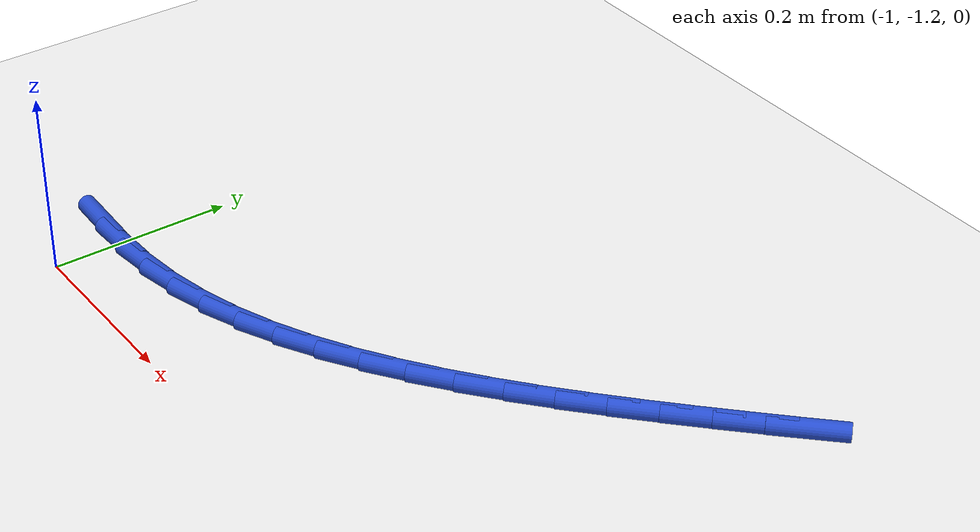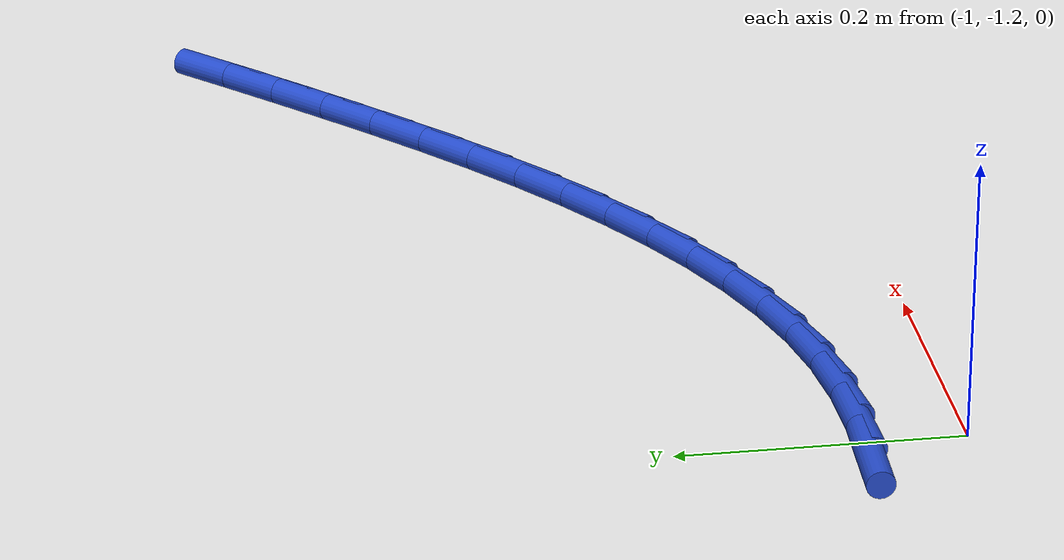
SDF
<sdf version="1.6">
 <world name="default">
  <model name="ground_plane">
   <static>1</static>
   <link name="link">
    <collision name="collision">
     <geometry><plane><normal>0 0 1</normal><size>100 100</size></plane></geometry>
     <surface><friction><ode><mu>100</mu><mu2>50</mu2></ode></friction></surface>
    </collision>
    <visual name="visual">
     <cast_shadows>0</cast_shadows>
     <geometry><plane><normal>0 0 1</normal><size>100 100</size></plane></geometry>
     <material>
      <script><uri>file://media/materials/scripts/gazebo.material</uri><name>Gazebo/WhiteGlow</name></script>
     </material>
    </visual>
   </link>
  </model>
  <model name="line">
   <link name="link_105">
    <pose>-1.0356051593560105 -1.1260041115567843 0.01 0 1.57 -0.04050915887077351</pose>
    <collision name="collision">
     <geometry><cylinder><radius>0.01</radius><length>0.08</length></cylinder></geometry>
    </collision>
    <visual name="visual">
     <material>
      <script><name>Gazebo/Blue</name><uri>file://media/materials/scripts/gazebo.material</uri></script>
     </material>
     <geometry><cylinder><radius>0.01</radius><length>0.08</length></cylinder></geometry>
    </visual>
   </link>
   <link name="link_106">
    <pose>-0.9882071795258592 -1.1279252148051802 0.01 0 1.57 0.03249431978433249</pose>
    <collision name="collision">
     <geometry><cylinder><radius>0.01</radius><length>0.08</length></cylinder></geometry>
    </collision>
    <visual name="visual">
     <material>
      <script><name>Gazebo/Blue</name><uri>file://media/materials/scripts/gazebo.material</uri></script>
     </material>
     <geometry><cylinder><radius>0.01</radius><length>0.08</length></cylinder></geometry>
    </visual>
   </link>
   <link name="link_107">
    <pose>-0.9413491023537062 -1.1264020573324094 0.01 0 1.57 0.11411896585968327</pose>
    <collision name="collision">
     <geometry><cylinder><radius>0.01</radius><length>0.08</length></cylinder></geometry>
    </collision>
    <visual name="visual">
     <material>
      <script><name>Gazebo/Blue</name><uri>file://media/materials/scripts/gazebo.material</uri></script>
     </material>
     <geometry><cylinder><radius>0.01</radius><length>0.08</length></cylinder></geometry>
    </visual>
   </link>
   <link name="link_108">
    <pose>-0.8952899647987054 -1.1211228991957614 0.01 0 1.57 0.2039779095699466</pose>
    <collision name="collision">
     <geometry><cylinder><radius>0.01</radius><length>0.08</length></cylinder></geometry>
    </collision>
    <visual name="visual">
     <material>
      <script><name>Gazebo/Blue</name><uri>file://media/materials/scripts/gazebo.material</uri></script>
     </material>
     <geometry><cylinder><radius>0.01</radius><length>0.08</length></cylinder></geometry>
    </visual>
   </link>
   <link name="link_109">
    <pose>-0.8502720830425186 -1.1118107357631113 0.01 0 1.57 0.2929781114307574</pose>
    <collision name="collision">
     <geometry><cylinder><radius>0.01</radius><length>0.08</length></cylinder></geometry>
    </collision>
    <visual name="visual">
     <material>
      <script><name>Gazebo/Blue</name><uri>file://media/materials/scripts/gazebo.material</uri></script>
     </material>
     <geometry><cylinder><radius>0.01</radius><length>0.08</length></cylinder></geometry>
    </visual>
   </link>
   <link name="link_110">
    <pose>-0.8063573110991896 -1.098563449840672 0.01 0 1.57 0.37469497606978247</pose>
    <collision name="collision">
     <geometry><cylinder><radius>0.01</radius><length>0.08</length></cylinder></geometry>
    </collision>
    <visual name="visual">
     <material>
      <script><name>Gazebo/Blue</name><uri>file://media/materials/scripts/gazebo.material</uri></script>
     </material>
     <geometry><cylinder><radius>0.01</radius><length>0.08</length></cylinder></geometry>
    </visual>
   </link>
   <link name="link_111">
    <pose>-0.7634973605142386 -1.0817077313493142 0.01 0 1.57 0.4483701024820429</pose>
    <collision name="collision">
     <geometry><cylinder><radius>0.01</radius><length>0.08</length></cylinder></geometry>
    </collision>
    <visual name="visual">
     <material>
      <script><name>Gazebo/Blue</name><uri>file://media/materials/scripts/gazebo.material</uri></script>
     </material>
     <geometry><cylinder><radius>0.01</radius><length>0.08</length></cylinder></geometry>
    </visual>
   </link>
   <link name="link_112">
    <pose>-0.7216423698958481 -1.061573537789236 0.01 0 1.57 0.5138095835458559</pose>
    <collision name="collision">
     <geometry><cylinder><radius>0.01</radius><length>0.08</length></cylinder></geometry>
    </collision>
    <visual name="visual">
     <material>
      <script><name>Gazebo/Blue</name><uri>file://media/materials/scripts/gazebo.material</uri></script>
     </material>
     <geometry><cylinder><radius>0.01</radius><length>0.08</length></cylinder></geometry>
    </visual>
   </link>
   <link name="link_113">
    <pose>-0.6807424778522015 -1.038490826660636 0.01 0 1.57 0.5711680020986871</pose>
    <collision name="collision">
     <geometry><cylinder><radius>0.01</radius><length>0.08</length></cylinder></geometry>
    </collision>
    <visual name="visual">
     <material>
      <script><name>Gazebo/Blue</name><uri>file://media/materials/scripts/gazebo.material</uri></script>
     </material>
     <geometry><cylinder><radius>0.01</radius><length>0.08</length></cylinder></geometry>
    </visual>
   </link>
   <link name="link_114">
    <pose>-0.6407478229914838 -1.0127895554637139 0.01 0 1.57 0.6208117167342553</pose>
    <collision name="collision">
     <geometry><cylinder><radius>0.01</radius><length>0.08</length></cylinder></geometry>
    </collision>
    <visual name="visual">
     <material>
      <script><name>Gazebo/Blue</name><uri>file://media/materials/scripts/gazebo.material</uri></script>
     </material>
     <geometry><cylinder><radius>0.01</radius><length>0.08</length></cylinder></geometry>
    </visual>
   </link>
   <link name="link_115">
    <pose>-0.6016085439218776 -0.9847996816986677 0.01 0 1.57 0.6632072885071897</pose>
    <collision name="collision">
     <geometry><cylinder><radius>0.01</radius><length>0.08</length></cylinder></geometry>
    </collision>
    <visual name="visual">
     <material>
      <script><name>Gazebo/Blue</name><uri>file://media/materials/scripts/gazebo.material</uri></script>
     </material>
     <geometry><cylinder><radius>0.01</radius><length>0.08</length></cylinder></geometry>
    </visual>
   </link>
   <link name="link_116">
    <pose>-0.5632747792515667 -0.9548511628656965 0.01 0 1.57 0.6988406682095148</pose>
    <collision name="collision">
     <geometry><cylinder><radius>0.01</radius><length>0.08</length></cylinder></geometry>
    </collision>
    <visual name="visual">
     <material>
      <script><name>Gazebo/Blue</name><uri>file://media/materials/scripts/gazebo.material</uri></script>
     </material>
     <geometry><cylinder><radius>0.01</radius><length>0.08</length></cylinder></geometry>
    </visual>
   </link>
   <link name="link_117">
    <pose>-0.5256966675887338 -0.9232739564649983 0.01 0 1.57 0.7281634878674774</pose>
    <collision name="collision">
     <geometry><cylinder><radius>0.01</radius><length>0.08</length></cylinder></geometry>
    </collision>
    <visual name="visual">
     <material>
      <script><name>Gazebo/Blue</name><uri>file://media/materials/scripts/gazebo.material</uri></script>
     </material>
     <geometry><cylinder><radius>0.01</radius><length>0.08</length></cylinder></geometry>
    </visual>
   </link>
   <link name="link_118">
    <pose>-0.48882434754156373 -0.8903980199967728 0.01 0 1.57 0.7515594780070706</pose>
    <collision name="collision">
     <geometry><cylinder><radius>0.01</radius><length>0.08</length></cylinder></geometry>
    </collision>
    <visual name="visual">
     <material>
      <script><name>Gazebo/Blue</name><uri>file://media/materials/scripts/gazebo.material</uri></script>
     </material>
     <geometry><cylinder><radius>0.01</radius><length>0.08</length></cylinder></geometry>
    </visual>
   </link>
   <link name="link_119">
    <pose>-0.4526079577182395 -0.8565533109612182 0.01 0 1.57 0.7693240011274396</pose>
    <collision name="collision">
     <geometry><cylinder><radius>0.01</radius><length>0.08</length></cylinder></geometry>
    </collision>
    <visual name="visual">
     <material>
      <script><name>Gazebo/Blue</name><uri>file://media/materials/scripts/gazebo.material</uri></script>
     </material>
     <geometry><cylinder><radius>0.01</radius><length>0.08</length></cylinder></geometry>
    </visual>
   </link>
   <link name="link_120">
    <pose>-0.4169976367269447 -0.8220697868585336 0.01 0 1.57 0.7816509366313373</pose>
    <collision name="collision">
     <geometry><cylinder><radius>0.01</radius><length>0.08</length></cylinder></geometry>
    </collision>
    <visual name="visual">
     <material>
      <script><name>Gazebo/Blue</name><uri>file://media/materials/scripts/gazebo.material</uri></script>
     </material>
     <geometry><cylinder><radius>0.01</radius><length>0.08</length></cylinder></geometry>
    </visual>
   </link>
   <link name="link_121">
    <pose>-0.38194352317586283 -0.7872774051889172 0.01 0 1.57 0.7896922205356246</pose>
    <collision name="collision">
     <geometry><cylinder><radius>0.01</radius><length>0.08</length></cylinder></geometry>
    </collision>
    <visual name="visual">
     <material>
      <script><name>Gazebo/Blue</name><uri>file://media/materials/scripts/gazebo.material</uri></script>
     </material>
     <geometry><cylinder><radius>0.01</radius><length>0.08</length></cylinder></geometry>
    </visual>
   </link>
   <link name="link_122">
    <pose>-0.34742046277863653 -0.7524565763389007 0.01 0 1.57 0.8003741568133073</pose>
    <collision name="collision">
     <geometry><cylinder><radius>0.01</radius><length>0.08</length></cylinder></geometry>
    </collision>
    <visual name="visual">
     <material>
      <script><name>Gazebo/Blue</name><uri>file://media/materials/scripts/gazebo.material</uri></script>
     </material>
     <geometry><cylinder><radius>0.01</radius><length>0.08</length></cylinder></geometry>
    </visual>
   </link>
  </model>
 </world>
</sdf>
